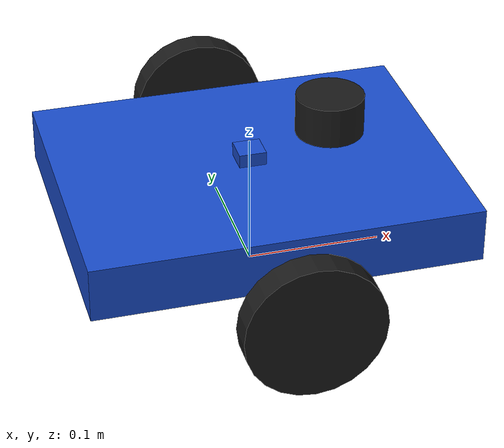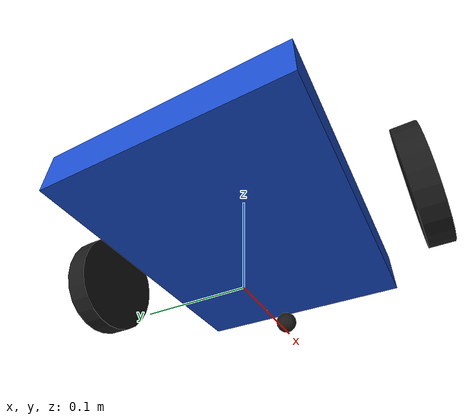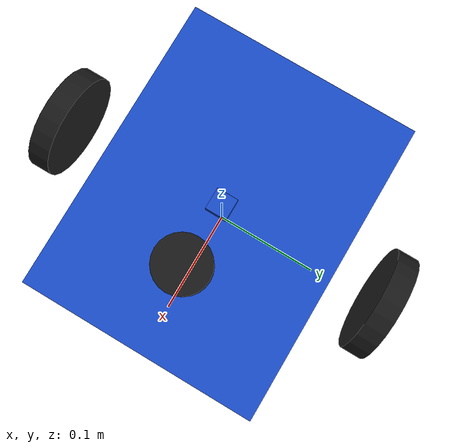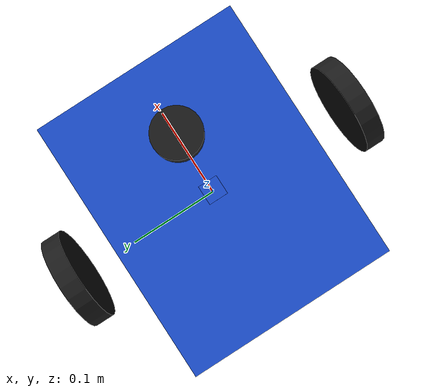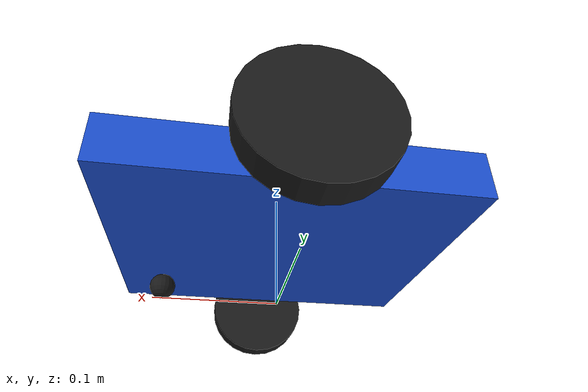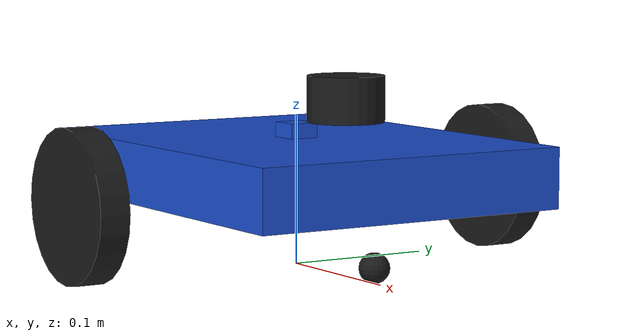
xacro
<?xml version="1.0"?>
<robot name="my_robot" xmlns:xacro="http://www.ros.org/wiki/xacro">
  <xacro:include filename="my_robot.xacro"/>
  <gazebo reference="base_link"><material>Gazebo/Blue</material></gazebo>
  <gazebo reference="left_wheel_link"><material>Gazebo/Black</material><mu1>1.0</mu1><mu2>1.0</mu2></gazebo>
  <gazebo reference="right_wheel_link"><material>Gazebo/Black</material><mu1>1.0</mu1><mu2>1.0</mu2></gazebo>
  <gazebo reference="caster_link"><mu1>0.1</mu1><mu2>0.1</mu2></gazebo>
  <gazebo>
    <plugin name="diff_drive" filename="libgazebo_ros_diff_drive.so">
      <ros><remapping>cmd_vel:=cmd_vel</remapping><remapping>odom:=odom</remapping></ros>
      <update_rate>50</update_rate>
      <left_joint>left_wheel_joint</left_joint><right_joint>right_wheel_joint</right_joint>
      <wheel_separation>$(arg wheel_sep)</wheel_separation><wheel_diameter>${2*r}</wheel_diameter>
      <max_wheel_torque>5</max_wheel_torque><max_wheel_acceleration>1.0</max_wheel_acceleration>
      <odometry_source>0</odometry_source>
      <publish_odom>true</publish_odom><publish_odom_tf>true</publish_odom_tf><publish_wheel_tf>false</publish_wheel_tf>
      <odometry_frame>odom</odometry_frame><robot_base_frame>base_footprint</robot_base_frame>
    </plugin>
    <plugin name="joint_state" filename="libgazebo_ros_joint_state_publisher.so">
      <update_rate>50</update_rate>
      <joint_name>left_wheel_joint</joint_name><joint_name>right_wheel_joint</joint_name>
    </plugin>
  </gazebo>
  <gazebo reference="laser_link">
    <sensor name="lidar" type="ray">
      <always_on>true</always_on><update_rate>10</update_rate><pose>0 0 0 0 0 0</pose>
      <ray>
        <scan><horizontal><samples>360</samples><resolution>1</resolution><min_angle>-3.14159</min_angle><max_angle>3.14159</max_angle></horizontal></scan>
        <range><min>0.12</min><max>8.0</max><resolution>0.01</resolution></range>
        <noise><type>gaussian</type><mean>0</mean><stddev>0.01</stddev></noise>
      </ray>
      <plugin name="laser" filename="libgazebo_ros_ray_sensor.so">
        <ros><remapping>~/out:=scan</remapping></ros>
        <output_type>sensor_msgs/LaserScan</output_type><frame_name>laser_link</frame_name>
      </plugin>
    </sensor>
  </gazebo>
  <gazebo reference="imu_link">
    <sensor name="imu_sensor" type="imu">
      <always_on>true</always_on><update_rate>100</update_rate>
      <plugin name="imu" filename="libgazebo_ros_imu_sensor.so">
        <ros><remapping>~/out:=imu</remapping></ros>
        <frame_name>imu_link</frame_name><initial_orientation_as_reference>false</initial_orientation_as_reference>
      </plugin>
    </sensor>
  </gazebo>
</robot>

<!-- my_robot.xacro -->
<robot name="my_robot" xmlns:xacro="http://www.ros.org/wiki/xacro">
  <xacro:arg name="wheel_radius" default="0.05"/>
  <xacro:arg name="wheel_sep" default="0.32"/>
  <xacro:arg name="base_length" default="0.28"/>
  <xacro:arg name="base_width" default="0.22"/>
  <xacro:arg name="use_lidar" default="true"/>
  <xacro:property name="r" value="$(arg wheel_radius)"/>
  <xacro:property name="sep" value="$(arg wheel_sep)"/>
  <xacro:property name="a" value="$(arg base_length)"/>
  <xacro:property name="b" value="$(arg base_width)"/>
  <xacro:property name="h" value="0.04"/>
  <xacro:property name="base_z" value="0.065"/>
  <material name="blue"><color rgba="0.1 0.3 0.8 1"/></material>
  <material name="black"><color rgba="0.1 0.1 0.1 1"/></material>
  <link name="base_footprint"/>
  <link name="base_link">
    <visual><geometry><box size="${a} ${b} ${h}"/></geometry><material name="blue"/></visual>
    <collision><geometry><box size="${a} ${b} ${h}"/></geometry></collision>
    <inertial><mass value="1.0"/><inertia ixx="${(b*b+h*h)/12}" ixy="0" ixz="0" iyy="${(a*a+h*h)/12}" iyz="0" izz="${(a*a+b*b)/12}"/></inertial>
  </link>
  <joint name="footprint_to_base" type="fixed"><parent link="base_footprint"/><child link="base_link"/><origin xyz="0 0 ${base_z}"/></joint>
  <xacro:macro name="wheel" params="prefix reflect">
    <link name="${prefix}_wheel_link">
      <visual><origin rpy="${pi/2} 0 0"/><geometry><cylinder radius="${r}" length="0.02"/></geometry><material name="black"/></visual>
      <collision><origin rpy="${pi/2} 0 0"/><geometry><cylinder radius="${r}" length="0.02"/></geometry></collision>
      <inertial><origin rpy="${pi/2} 0 0"/><mass value="0.1"/><inertia ixx="${0.1*(3*r*r+0.02*0.02)/12}" ixy="0" ixz="0" iyy="${0.1*(3*r*r+0.02*0.02)/12}" iyz="0" izz="${0.1*r*r/2}"/></inertial>
    </link>
    <joint name="${prefix}_wheel_joint" type="continuous"><parent link="base_link"/><child link="${prefix}_wheel_link"/><origin xyz="0 ${reflect*sep/2} ${r-base_z}"/><axis xyz="0 1 0"/></joint>
  </xacro:macro>
  <xacro:wheel prefix="left" reflect="1"/><xacro:wheel prefix="right" reflect="-1"/>
  <link name="caster_link">
    <visual><geometry><sphere radius="0.01"/></geometry><material name="black"/></visual>
    <collision><geometry><sphere radius="0.01"/></geometry></collision>
    <inertial><mass value="0.02"/><inertia ixx="0.0000008" ixy="0" ixz="0" iyy="0.0000008" iyz="0" izz="0.0000008"/></inertial>
  </link>
  <joint name="base_to_caster" type="fixed"><parent link="base_link"/><child link="caster_link"/><origin xyz="${a/3} 0 ${0.01-base_z}"/></joint>
  <xacro:if value="$(arg use_lidar)">
    <link name="laser_link">
      <visual><geometry><cylinder radius="0.025" length="0.03"/></geometry><material name="black"/></visual>
      <collision><geometry><cylinder radius="0.025" length="0.03"/></geometry></collision>
      <inertial><mass value="0.05"/><inertia ixx="0.00001156" ixy="0" ixz="0" iyy="0.00001156" iyz="0" izz="0.000015625"/></inertial>
    </link>
    <joint name="base_to_laser" type="fixed"><parent link="base_link"/><child link="laser_link"/><origin xyz="0.06 0 0.05"/></joint>
  </xacro:if>
  <link name="imu_link">
    <visual><geometry><box size="0.02 0.02 0.01"/></geometry><material name="blue"/></visual>
    <inertial><mass value="0.01"/><inertia ixx="0.0000004167" ixy="0" ixz="0" iyy="0.0000004167" iyz="0" izz="0.0000006667"/></inertial>
  </link>
  <joint name="base_to_imu" type="fixed"><parent link="base_link"/><child link="imu_link"/><origin xyz="0 0 0.025"/></joint>
</robot>
